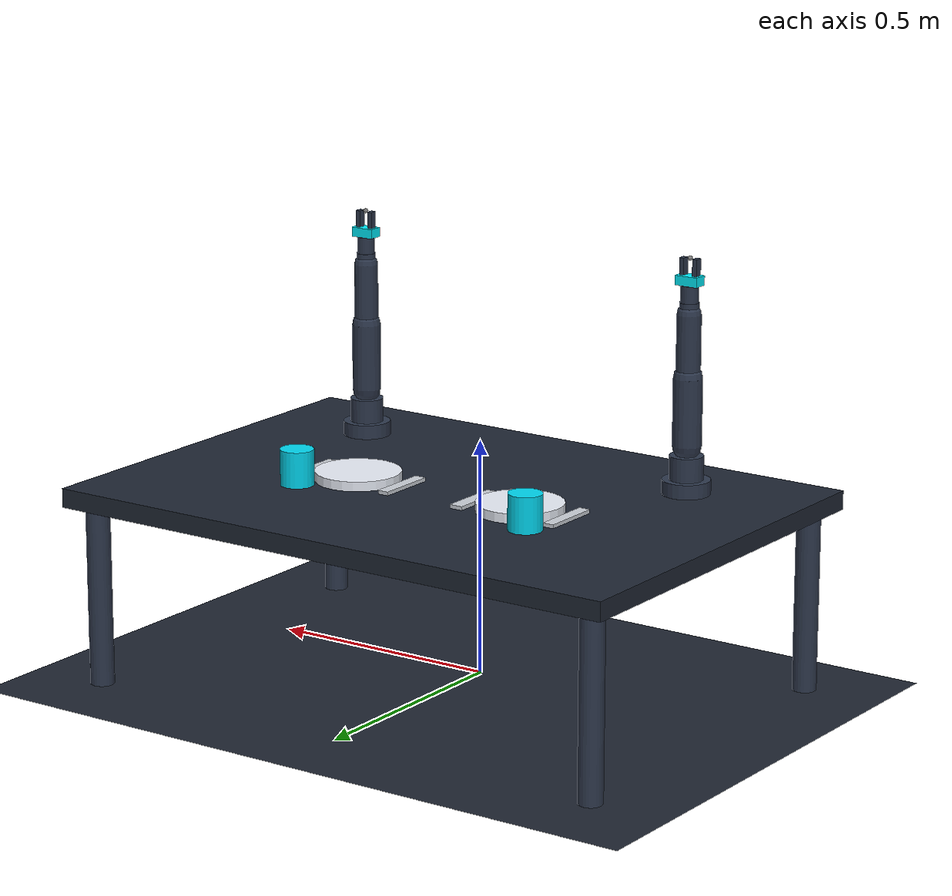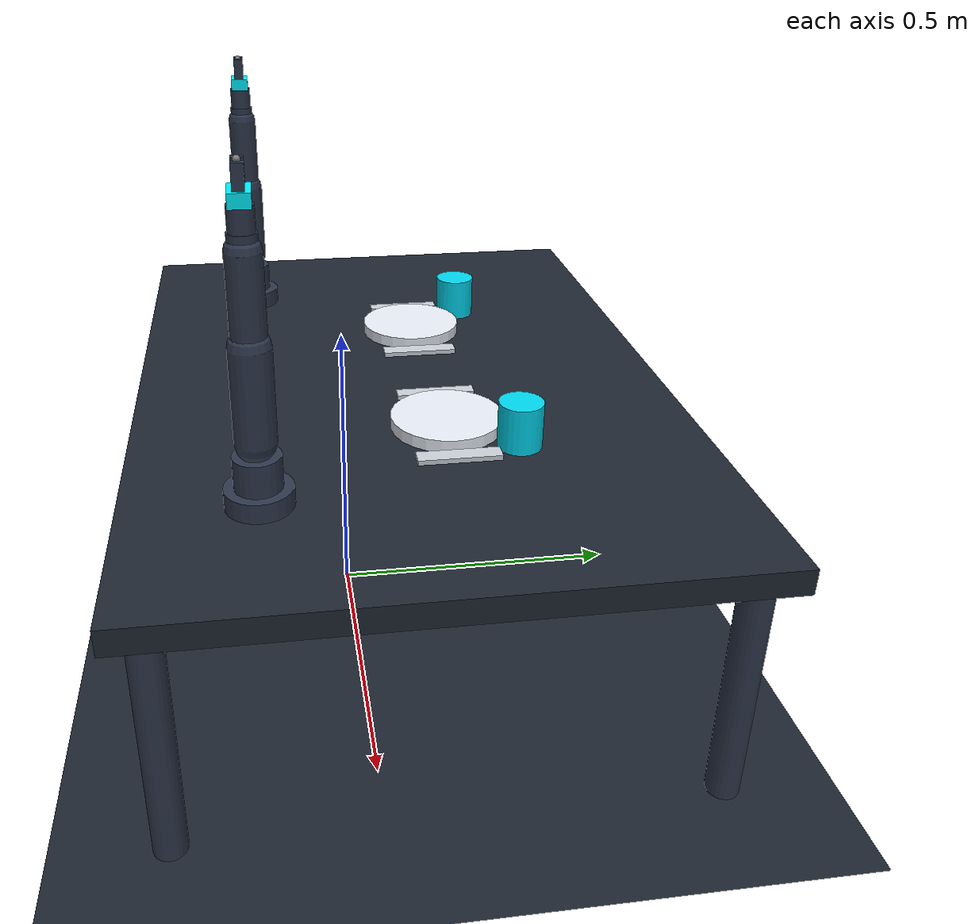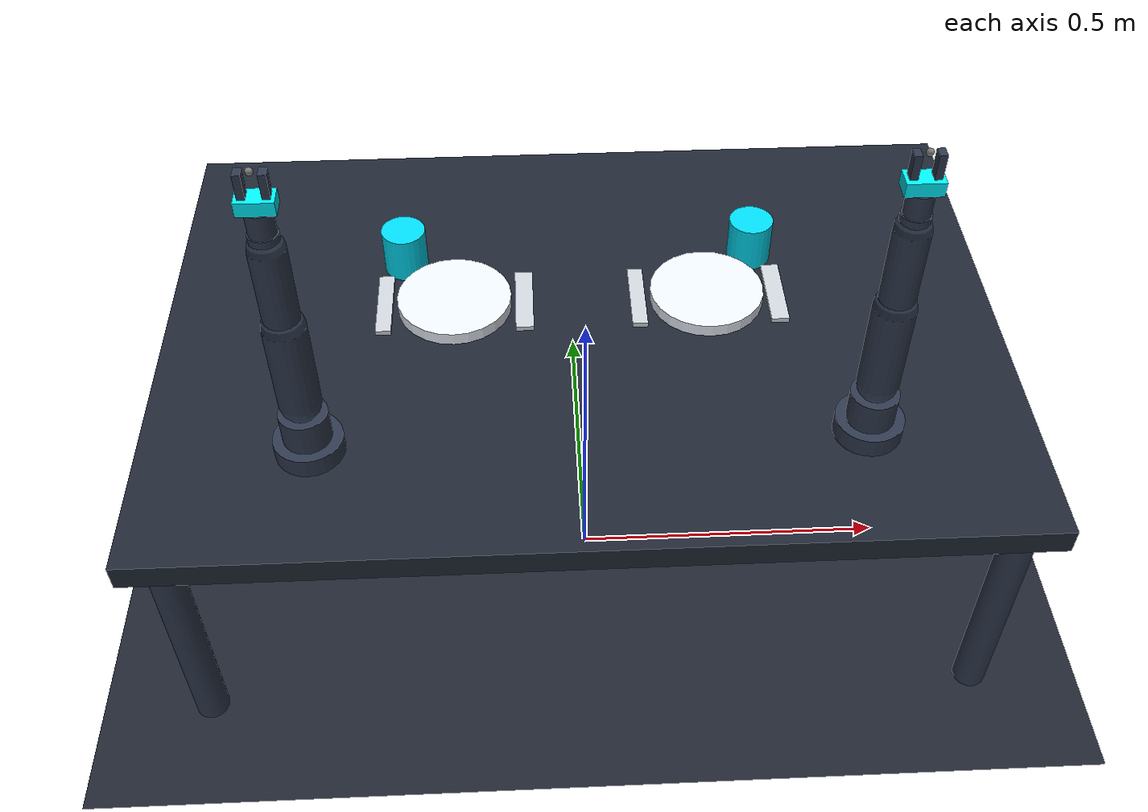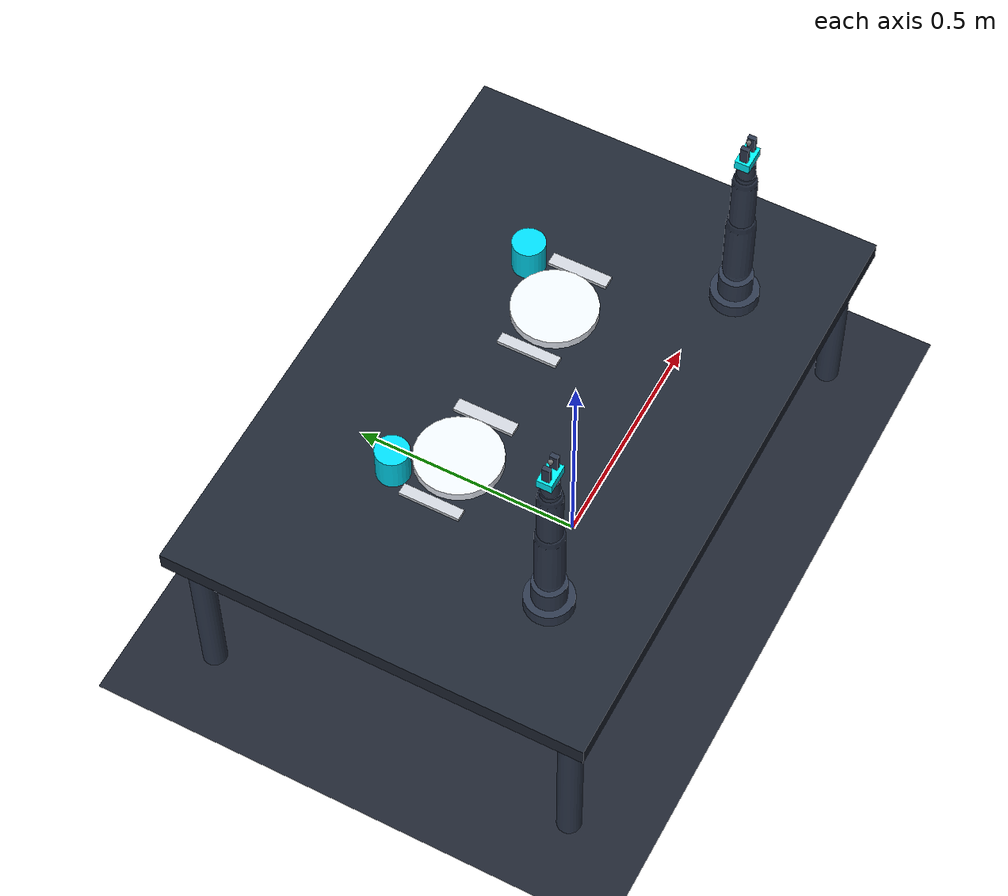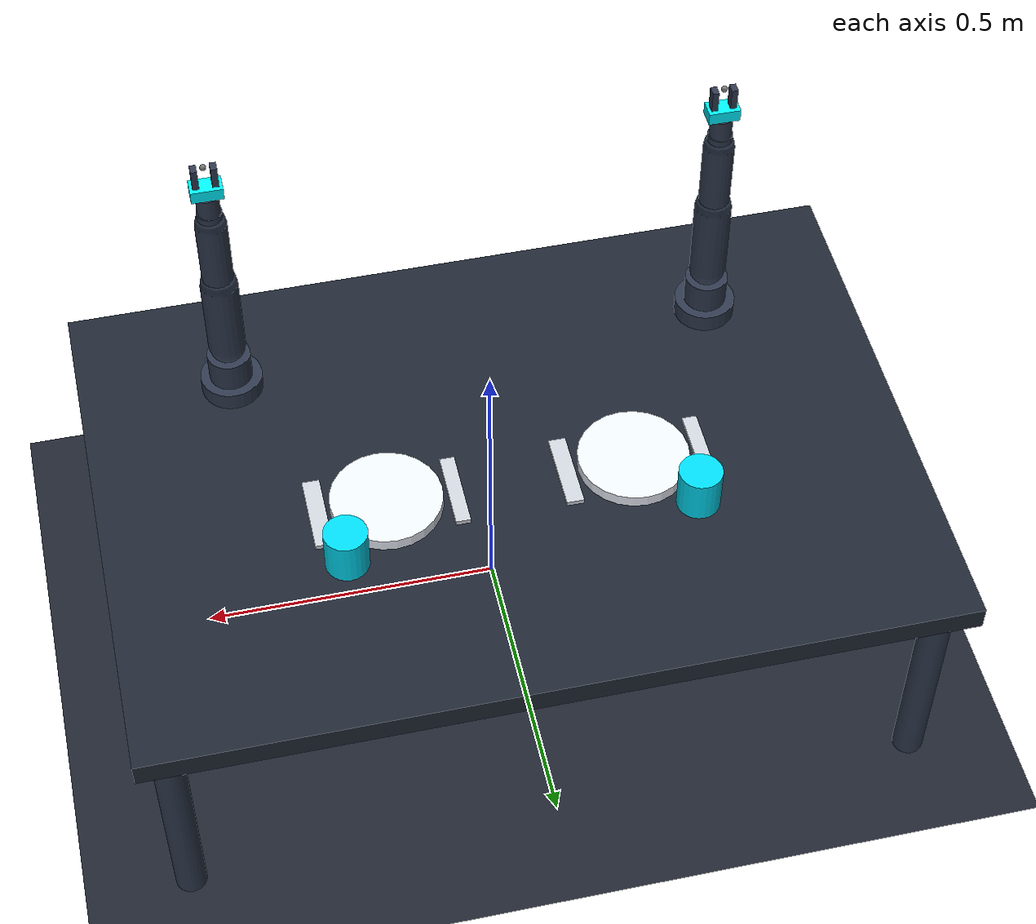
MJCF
<mujoco model="so101_bimanual_table">
  <compiler angle="radian" coordinate="local" meshdir="meshes/"/>
  <option timestep="0.002" gravity="0 0 -9.81" iterations="50" solver="Newton"/>

  <visual>
    <headlight ambient="0.3 0.3 0.35" diffuse="0.8 0.8 0.8" specular="0.2 0.2 0.2"/>
    <rgba haze="0.05 0.08 0.12 1"/>
  </visual>

  <asset>
    <texture type="skybox" builtin="gradient" rgb1="0.04 0.06 0.09" rgb2="0.08 0.12 0.16" width="512" height="512"/>
    <texture name="grid" type="2d" builtin="checker" rgb1="0.1 0.12 0.16" rgb2="0.14 0.17 0.22" width="512" height="512"/>
    <material name="grid_mat" texture="grid" texrepeat="20 20" reflectance="0.1"/>
    <material name="table_mat" rgba="0.12 0.15 0.2 1" roughness="0.4" reflectance="0.2"/>
    <material name="arm_mat" rgba="0.18 0.22 0.3 1" roughness="0.3" metalness="0.8"/>
    <material name="joint_mat" rgba="0.0 0.94 1.0 1" emission="0.4"/>
    <material name="plate_mat" rgba="0.92 0.94 0.98 1" roughness="0.2"/>
    <material name="cup_mat" rgba="0.0 0.85 0.95 1" roughness="0.3"/>
    <material name="cutlery_mat" rgba="0.8 0.82 0.85 1" roughness="0.1" metalness="0.9"/>
  </asset>

  <worldbody>
    <!-- Ground plane -->
    <geom name="floor" type="plane" size="5 5 0.1" material="grid_mat"/>

    <!-- Table Base -->
    <body name="table" pos="0 0.1 0.4">
      <geom name="tabletop" type="box" size="0.65 0.45 0.02" material="table_mat"/>
      <geom name="leg1" type="cylinder" size="0.025 0.2" pos="0.6 0.4 -0.2" material="arm_mat"/>
      <geom name="leg2" type="cylinder" size="0.025 0.2" pos="-0.6 0.4 -0.2" material="arm_mat"/>
      <geom name="leg3" type="cylinder" size="0.025 0.2" pos="0.6 -0.4 -0.2" material="arm_mat"/>
      <geom name="leg4" type="cylinder" size="0.025 0.2" pos="-0.6 -0.4 -0.2" material="arm_mat"/>
    </body>

    <!-- Overhead RGB-D Camera -->
    <camera name="overhead_cam" pos="0 0.1 1.4" euler="0 0 0" mode="fixed"/>
    <camera name="front_cam" pos="0 -0.8 0.9" euler="0.6 0 0" mode="fixed"/>

    <!-- LEFT SO-101 ARM -->
    <body name="left_arm_base" pos="-0.4 -0.15 0.42">
      <geom name="left_base_geom" type="cylinder" size="0.05 0.03" material="arm_mat"/>
      <body name="left_link1" pos="0 0 0.04">
        <joint name="left_joint1" type="hinge" axis="0 0 1" range="-2.8 2.8"/>
        <geom name="left_link1_geom" type="cylinder" size="0.035 0.04" material="arm_mat"/>
        <body name="left_link2" pos="0 0 0.06">
          <joint name="left_joint2" type="hinge" axis="0 1 0" range="-1.8 1.8"/>
          <geom name="left_link2_geom" type="capsule" fromto="0 0 0 0 0 0.14" size="0.03" material="arm_mat"/>
          <body name="left_link3" pos="0 0 0.14">
            <joint name="left_joint3" type="hinge" axis="0 1 0" range="-2.2 2.2"/>
            <geom name="left_link3_geom" type="capsule" fromto="0 0 0 0 0 0.13" size="0.025" material="arm_mat"/>
            <body name="left_link4" pos="0 0 0.13">
              <joint name="left_joint4" type="hinge" axis="0 1 0" range="-2.0 2.0"/>
              <geom name="left_link4_geom" type="cylinder" size="0.02 0.025" material="arm_mat"/>
              <body name="left_link5" pos="0 0 0.04">
                <joint name="left_joint5" type="hinge" axis="0 0 1" range="-3.14 3.14"/>
                <geom name="left_link5_geom" type="cylinder" size="0.018 0.02" material="arm_mat"/>
                <!-- End Effector Gripper -->
                <body name="left_ee" pos="0 0 0.03">
                  <geom name="left_ee_palm" type="box" size="0.025 0.015 0.01" material="joint_mat"/>
                  <body name="left_gripper_left" pos="-0.015 0 0.025">
                    <joint name="left_gripper_joint" type="slide" axis="1 0 0" range="-0.02 0.02"/>
                    <geom name="left_finger1" type="box" size="0.005 0.008 0.02" material="arm_mat"/>
                  </body>
                  <body name="left_gripper_right" pos="0.015 0 0.025">
                    <geom name="left_finger2" type="box" size="0.005 0.008 0.02" material="arm_mat"/>
                  </body>
                  <site name="left_tool_point" pos="0 0 0.045" size="0.005"/>
                </body>
              </body>
            </body>
          </body>
        </body>
      </body>
    </body>

    <!-- RIGHT SO-101 ARM -->
    <body name="right_arm_base" pos="0.4 -0.15 0.42">
      <geom name="right_base_geom" type="cylinder" size="0.05 0.03" material="arm_mat"/>
      <body name="right_link1" pos="0 0 0.04">
        <joint name="right_joint1" type="hinge" axis="0 0 1" range="-2.8 2.8"/>
        <geom name="right_link1_geom" type="cylinder" size="0.035 0.04" material="arm_mat"/>
        <body name="right_link2" pos="0 0 0.06">
          <joint name="right_joint2" type="hinge" axis="0 1 0" range="-1.8 1.8"/>
          <geom name="right_link2_geom" type="capsule" fromto="0 0 0 0 0 0.14" size="0.03" material="arm_mat"/>
          <body name="right_link3" pos="0 0 0.14">
            <joint name="right_joint3" type="hinge" axis="0 1 0" range="-2.2 2.2"/>
            <geom name="right_link3_geom" type="capsule" fromto="0 0 0 0 0 0.13" size="0.025" material="arm_mat"/>
            <body name="right_link4" pos="0 0 0.13">
              <joint name="right_joint4" type="hinge" axis="0 1 0" range="-2.0 2.0"/>
              <geom name="right_link4_geom" type="cylinder" size="0.02 0.025" material="arm_mat"/>
              <body name="right_link5" pos="0 0 0.04">
                <joint name="right_joint5" type="hinge" axis="0 0 1" range="-3.14 3.14"/>
                <geom name="right_link5_geom" type="cylinder" size="0.018 0.02" material="arm_mat"/>
                <!-- End Effector Gripper -->
                <body name="right_ee" pos="0 0 0.03">
                  <geom name="right_ee_palm" type="box" size="0.025 0.015 0.01" material="joint_mat"/>
                  <body name="right_gripper_left" pos="-0.015 0 0.025">
                    <joint name="right_gripper_joint" type="slide" axis="1 0 0" range="-0.02 0.02"/>
                    <geom name="right_finger1" type="box" size="0.005 0.008 0.02" material="arm_mat"/>
                  </body>
                  <body name="right_gripper_right" pos="0.015 0 0.025">
                    <geom name="right_finger2" type="box" size="0.005 0.008 0.02" material="arm_mat"/>
                  </body>
                  <site name="right_tool_point" pos="0 0 0.045" size="0.005"/>
                </body>
              </body>
            </body>
          </body>
        </body>
      </body>
    </body>

    <!-- TABLETOP MANIPULATION OBJECTS -->
    <body name="plate_1" pos="-0.2 0.15 0.43">
      <freejoint/>
      <geom name="plate1_geom" type="cylinder" size="0.09 0.01" material="plate_mat" mass="0.2"/>
    </body>

    <body name="plate_2" pos="0.2 0.15 0.43">
      <freejoint/>
      <geom name="plate2_geom" type="cylinder" size="0.09 0.01" material="plate_mat" mass="0.2"/>
    </body>

    <body name="mug_1" pos="-0.28 0.25 0.45">
      <freejoint/>
      <geom name="mug1_geom" type="cylinder" size="0.035 0.045" material="cup_mat" mass="0.15"/>
    </body>

    <body name="mug_2" pos="0.28 0.25 0.45">
      <freejoint/>
      <geom name="mug2_geom" type="cylinder" size="0.035 0.045" material="cup_mat" mass="0.15"/>
    </body>

    <body name="fork_1" pos="-0.31 0.15 0.425">
      <freejoint/>
      <geom name="fork1_geom" type="box" size="0.012 0.065 0.004" material="cutlery_mat" mass="0.05"/>
    </body>

    <body name="spoon_1" pos="-0.09 0.15 0.425">
      <freejoint/>
      <geom name="spoon1_geom" type="box" size="0.014 0.065 0.004" material="cutlery_mat" mass="0.05"/>
    </body>

    <body name="fork_2" pos="0.09 0.15 0.425">
      <freejoint/>
      <geom name="fork2_geom" type="box" size="0.012 0.065 0.004" material="cutlery_mat" mass="0.05"/>
    </body>

    <body name="spoon_2" pos="0.31 0.15 0.425">
      <freejoint/>
      <geom name="spoon2_geom" type="box" size="0.014 0.065 0.004" material="cutlery_mat" mass="0.05"/>
    </body>
  </worldbody>

  <actuator>
    <!-- Left Arm Actuators -->
    <motor name="left_motor1" joint="left_joint1" gear="1" ctrlrange="-10 10"/>
    <motor name="left_motor2" joint="left_joint2" gear="1" ctrlrange="-15 15"/>
    <motor name="left_motor3" joint="left_joint3" gear="1" ctrlrange="-12 12"/>
    <motor name="left_motor4" joint="left_joint4" gear="1" ctrlrange="-8 8"/>
    <motor name="left_motor5" joint="left_joint5" gear="1" ctrlrange="-5 5"/>
    <position name="left_gripper_act" joint="left_gripper_joint" kp="50" ctrlrange="-0.02 0.02"/>

    <!-- Right Arm Actuators -->
    <motor name="right_motor1" joint="right_joint1" gear="1" ctrlrange="-10 10"/>
    <motor name="right_motor2" joint="right_joint2" gear="1" ctrlrange="-15 15"/>
    <motor name="right_motor3" joint="right_joint3" gear="1" ctrlrange="-12 12"/>
    <motor name="right_motor4" joint="right_joint4" gear="1" ctrlrange="-8 8"/>
    <motor name="right_motor5" joint="right_joint5" gear="1" ctrlrange="-5 5"/>
    <position name="right_gripper_act" joint="right_gripper_joint" kp="50" ctrlrange="-0.02 0.02"/>
  </actuator>
</mujoco>
